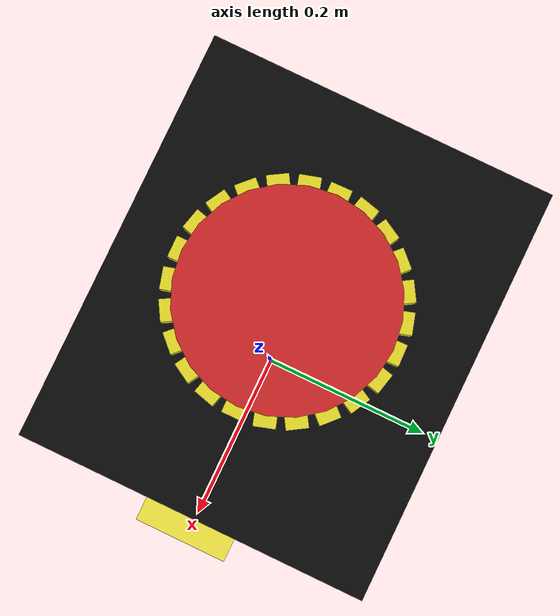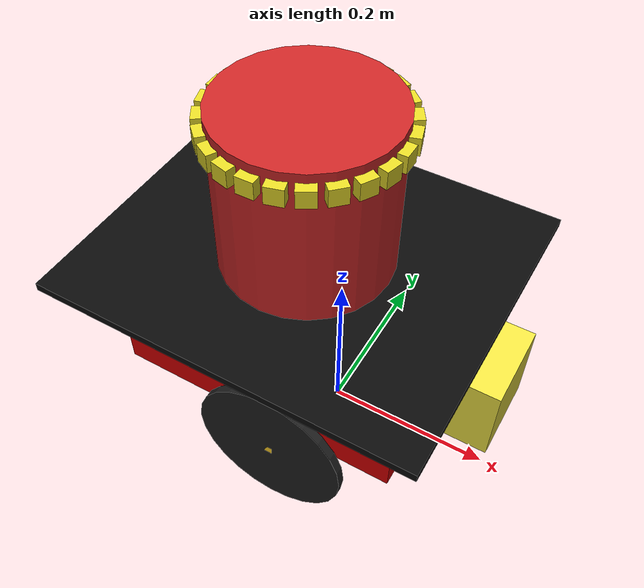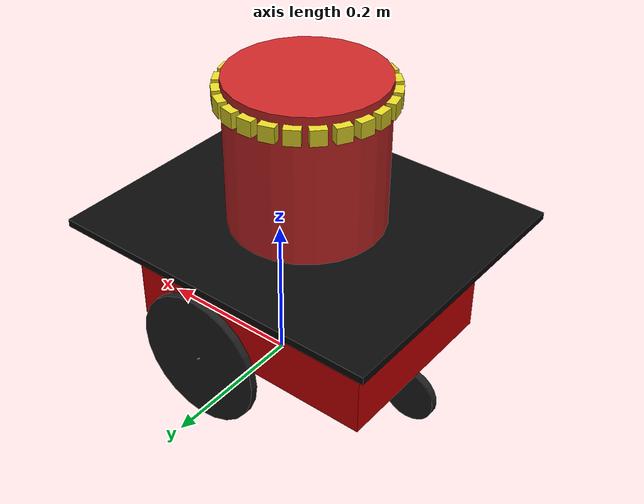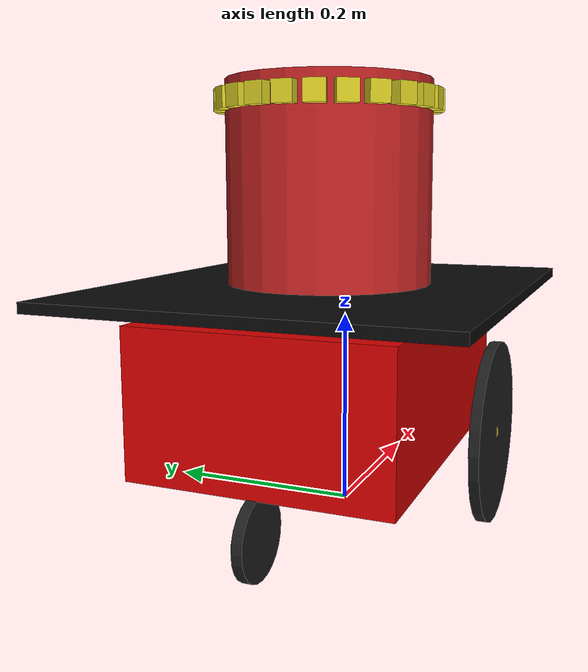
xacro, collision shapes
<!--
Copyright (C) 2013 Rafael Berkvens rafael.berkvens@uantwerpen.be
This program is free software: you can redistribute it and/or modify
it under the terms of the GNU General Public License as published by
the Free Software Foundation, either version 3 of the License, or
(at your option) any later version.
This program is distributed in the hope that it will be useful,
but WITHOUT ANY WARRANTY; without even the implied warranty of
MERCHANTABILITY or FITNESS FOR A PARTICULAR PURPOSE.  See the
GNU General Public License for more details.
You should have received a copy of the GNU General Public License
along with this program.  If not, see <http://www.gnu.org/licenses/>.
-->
<?xml version="1.0"?>

<robot name="pioneer3dx" xmlns:xacro="http://ros.org/wiki/xacro">

  <!-- import all gazebo-customization elements, including gazebo colors -->
  <xacro:include filename="$(find p3dx_description)/urdf/pioneer3dx.gazebo" />
  <!-- import the pioneer 3dx's wheels -->
  <xacro:include filename="$(find p3dx_description)/urdf/pioneer3dx_wheel.xacro" />

  <xacro:property name="irSize" value="0.02"/>
  <xacro:property name="irMass" value="0.01"/>

  <!-- chassis -->
	<link name="base_link">
		<inertial>
			<mass value="3.5" />
			<origin xyz="-0.05 0 0" />
			<inertia ixx="1" ixy="0" ixz="0" iyy="1" iyz="0" izz="1" />
		</inertial>

		<visual name="base_visual">
			<origin xyz="-0.045 0 0.148" rpy="0 0 0" />
			<geometry name="pioneer_geom">
				<mesh filename="package://p3dx_description/meshes/chassis.stl" />
			</geometry>
			<material name="ChassisRed">
				<color rgba="0.851 0.0 0.0 1.0" />
			</material>
		</visual>

		<collision>
			<origin xyz="-0.045 0 0.145" rpy="0 0 0" />
			<geometry>
				<box size="0.35 0.25 0.14" />
			</geometry>
		</collision>
	</link>

  <!-- top_plate -->
	<link name="top_plate">
		<inertial>
			<mass value="0.01" />
			<origin xyz="0 0 0" />
			<inertia ixx="1" ixy="0" ixz="0" iyy="1" iyz="0" izz="1" />
		</inertial>

		<visual name="base_visual">
			<origin xyz="0 0 0" rpy="0 0 0" />
			<geometry name="top_geom">
				<mesh filename="package://p3dx_description/meshes/top.stl" />
			</geometry>

			<material name="TopBlack">
				<color rgba="0.038 0.038 0.038 1.0" />
			</material>
		</visual>

		<collision>
			<origin xyz="0.0 0 0" rpy="0 0 0" />
			<geometry name="pioneer_geom">
				<box size="0.45 0.38 0.01" />
			</geometry>
		</collision>
	</link>

	<joint name="base_top_joint" type="fixed">
		<origin xyz="-0.045 0 0.234" rpy="0 0 0" />
		<parent link="base_link" />
		<child link="top_plate" />
	</joint>

	<link name="tower">
	  <collision name='tower_collision'>
	    <origin xyz="0 0 0" rpy="0 0 0" />
	    <geometry>
	      <cylinder radius="0.1" length="0.2" />
	    </geometry>
	  </collision>
	  <visual name='tower_visual'>
	    <origin xyz="0 0 0" rpy=" 0 0 0"/>
	    <geometry>
	      <cylinder radius="0.1" length="0.2" />
	    </geometry>
	  </visual>
	</link>

	<joint name="tower_joint" type="fixed">
          <origin xyz="0 0 0.1" rpy="0 0 0" />
	  <child link="tower"/>
	  <parent link="top_plate"/>
	</joint>

   <link name="ir1">
    <collision>
      <origin xyz="0.0 0 0.0" rpy="0 0 0"/>
      <geometry>
        <box size="${irSize} ${irSize} ${irSize}"/>
      </geometry>
    </collision>

    <visual>
      <origin xyz="0.0 0 0.0" rpy="0 0 0"/>
      <geometry>
        <box size="${irSize} ${irSize} ${irSize}"/>
      </geometry>
    </visual>

    <inertial>
      <mass value="${irMass}" />
      <origin xyz="0.0 0 0.0" rpy="0 0 0"/>
      <box_inertia m="${irMass}" x="${irSize}" y="${irSize}" z="${irSize}" />
      <inertia ixx="1e-6" ixy="0" ixz="0" iyy="1e-6" iyz="0" izz="1e-6" />
    </inertial>
  </link>
  <joint name="ir1_joint" type="fixed">
    <origin xyz="0.1 0 0.08" rpy="0 0 0"/>
    <parent link="tower"/>
    <child link="ir1"/>
  </joint>

  <link name="ir2">
    <collision>
      <origin xyz="0.0 0 0.0" rpy="0 0 0"/>
      <geometry>
        <box size="${irSize} ${irSize} ${irSize}"/>
      </geometry>
    </collision>

    <visual>
      <origin xyz="0.0 0 0.0" rpy="0 0 0"/>
      <geometry>
        <box size="${irSize} ${irSize} ${irSize}"/>
      </geometry>
    </visual>

    <inertial>
      <mass value="${irMass}" />
      <origin xyz="0.0 0 0.0" rpy="0 0 0"/>
      <box_inertia m="${irMass}" x="${irSize}" y="${irSize}" z="${irSize}" />
      <inertia ixx="1e-6" ixy="0" ixz="0" iyy="1e-6" iyz="0" izz="1e-6" />
    </inertial>
  </link>
  <joint name="ir2_joint" type="fixed">
    <origin xyz="0.097 -0.026 0.08" rpy="0 0 -0.26"/>
    <parent link="tower"/>
    <child link="ir2"/>
  </joint>

   <link name="ir3">
    <collision>
      <origin xyz="0.0 0 0.0" rpy="0 0 0"/>
      <geometry>
        <box size="${irSize} ${irSize} ${irSize}"/>
      </geometry>
    </collision>

    <visual>
      <origin xyz="0.0 0 0.0" rpy="0 0 0"/>
      <geometry>
        <box size="${irSize} ${irSize} ${irSize}"/>
      </geometry>
    </visual>

    <inertial>
      <mass value="${irMass}" />
      <origin xyz="0.0 0 0.0" rpy="0 0 0"/>
      <box_inertia m="${irMass}" x="${irSize}" y="${irSize}" z="${irSize}" />
      <inertia ixx="1e-6" ixy="0" ixz="0" iyy="1e-6" iyz="0" izz="1e-6" />
    </inertial>
  </link>
  <joint name="ir3_joint" type="fixed">
    <origin xyz="0.087 -0.05 0.08" rpy="0 0 -0.52"/>
    <parent link="tower"/>
    <child link="ir3"/>
  </joint>

  <link name="ir4">
    <collision>
      <origin xyz="0.0 0 0.0" rpy="0 0 0"/>
      <geometry>
        <box size="${irSize} ${irSize} ${irSize}"/>
      </geometry>
    </collision>

    <visual>
      <origin xyz="0.0 0 0.0" rpy="0 0 0"/>
      <geometry>
        <box size="${irSize} ${irSize} ${irSize}"/>
      </geometry>
    </visual>

    <inertial>
      <mass value="${irMass}" />
      <origin xyz="0.0 0 0.0" rpy="0 0 0"/>
      <box_inertia m="${irMass}" x="${irSize}" y="${irSize}" z="${irSize}" />
      <inertia ixx="1e-6" ixy="0" ixz="0" iyy="1e-6" iyz="0" izz="1e-6" />
    </inertial>
  </link>
  <joint name="ir4_joint" type="fixed">
    <origin xyz="0.0707 -0.0707 0.08" rpy="0 0 -0.78"/>
    <parent link="tower"/>
    <child link="ir4"/>
  </joint>

  <link name="ir5">
    <collision>
      <origin xyz="0.0 0 0.0" rpy="0 0 0"/>
      <geometry>
        <box size="${irSize} ${irSize} ${irSize}"/>
      </geometry>
    </collision>

    <visual>
      <origin xyz="0.0 0 0.0" rpy="0 0 0"/>
      <geometry>
        <box size="${irSize} ${irSize} ${irSize}"/>
      </geometry>
    </visual>

    <inertial>
      <mass value="${irMass}" />
      <origin xyz="0.0 0 0.0" rpy="0 0 0"/>
      <box_inertia m="${irMass}" x="${irSize}" y="${irSize}" z="${irSize}" />
      <inertia ixx="1e-6" ixy="0" ixz="0" iyy="1e-6" iyz="0" izz="1e-6" />
    </inertial>
  </link>
  <joint name="ir5_joint" type="fixed">
    <origin xyz="0.05 -0.087 0.08" rpy="0 0 -1.04"/>
    <parent link="tower"/>
    <child link="ir5"/>
  </joint>

  <link name="ir6">
    <collision>
      <origin xyz="0.0 0 0.0" rpy="0 0 0"/>
      <geometry>
        <box size="${irSize} ${irSize} ${irSize}"/>
      </geometry>
    </collision>

    <visual>
      <origin xyz="0.0 0 0.0" rpy="0 0 0"/>
      <geometry>
        <box size="${irSize} ${irSize} ${irSize}"/>
      </geometry>
    </visual>

    <inertial>
      <mass value="${irMass}" />
      <origin xyz="0.0 0 0.0" rpy="0 0 0"/>
      <box_inertia m="${irMass}" x="${irSize}" y="${irSize}" z="${irSize}" />
      <inertia ixx="1e-6" ixy="0" ixz="0" iyy="1e-6" iyz="0" izz="1e-6" />
    </inertial>
  </link>
  <joint name="ir6_joint" type="fixed">
    <origin xyz="0.026 -0.097 0.08" rpy="0 0 -1.30"/>
    <parent link="tower"/>
    <child link="ir6"/>
  </joint>

  <link name="ir7">
    <collision>
      <origin xyz="0.0 0 0.0" rpy="0 0 0"/>
      <geometry>
        <box size="${irSize} ${irSize} ${irSize}"/>
      </geometry>
    </collision>

    <visual>
      <origin xyz="0.0 0 0.0" rpy="0 0 0"/>
      <geometry>
        <box size="${irSize} ${irSize} ${irSize}"/>
      </geometry>
    </visual>

    <inertial>
      <mass value="${irMass}" />
      <origin xyz="0.0 0 0.0" rpy="0 0 0"/>
      <box_inertia m="${irMass}" x="${irSize}" y="${irSize}" z="${irSize}" />
      <inertia ixx="1e-6" ixy="0" ixz="0" iyy="1e-6" iyz="0" izz="1e-6" />
    </inertial>
  </link>
  <joint name="ir7_joint" type="fixed">
    <origin xyz="0 -0.1 0.08" rpy="0 0 -1.56"/>
    <parent link="tower"/>
    <child link="ir7"/>
  </joint>

  <link name="ir8">
    <collision>
      <origin xyz="0.0 0 0.0" rpy="0 0 0"/>
      <geometry>
        <box size="${irSize} ${irSize} ${irSize}"/>
      </geometry>
    </collision>

    <visual>
      <origin xyz="0.0 0 0.0" rpy="0 0 0"/>
      <geometry>
        <box size="${irSize} ${irSize} ${irSize}"/>
      </geometry>
    </visual>

    <inertial>
      <mass value="${irMass}" />
      <origin xyz="0.0 0 0.0" rpy="0 0 0"/>
      <box_inertia m="${irMass}" x="${irSize}" y="${irSize}" z="${irSize}" />
      <inertia ixx="1e-6" ixy="0" ixz="0" iyy="1e-6" iyz="0" izz="1e-6" />
    </inertial>
  </link>
  <joint name="ir8_joint" type="fixed">
    <origin xyz="-0.026 -0.097 0.08" rpy="0 0 -1.82"/>
    <parent link="tower"/>
    <child link="ir8"/>
  </joint>

  <link name="ir9">
    <collision>
      <origin xyz="0.0 0 0.0" rpy="0 0 0"/>
      <geometry>
        <box size="${irSize} ${irSize} ${irSize}"/>
      </geometry>
    </collision>

    <visual>
      <origin xyz="0.0 0 0.0" rpy="0 0 0"/>
      <geometry>
        <box size="${irSize} ${irSize} ${irSize}"/>
      </geometry>
    </visual>

    <inertial>
      <mass value="${irMass}" />
      <origin xyz="0.0 0 0.0" rpy="0 0 0"/>
      <box_inertia m="${irMass}" x="${irSize}" y="${irSize}" z="${irSize}" />
      <inertia ixx="1e-6" ixy="0" ixz="0" iyy="1e-6" iyz="0" izz="1e-6" />
    </inertial>
  </link>
  <joint name="ir9_joint" type="fixed">
    <origin xyz="-0.05 -0.087 0.08" rpy="0 0 -2.08"/>
    <parent link="tower"/>
    <child link="ir9"/>
  </joint>

  <link name="ir10">
    <collision>
      <origin xyz="0.0 0 0.0" rpy="0 0 0"/>
      <geometry>
        <box size="${irSize} ${irSize} ${irSize}"/>
      </geometry>
    </collision>

    <visual>
      <origin xyz="0.0 0 0.0" rpy="0 0 0"/>
      <geometry>
        <box size="${irSize} ${irSize} ${irSize}"/>
      </geometry>
    </visual>

    <inertial>
      <mass value="${irMass}" />
      <origin xyz="0.0 0 0.0" rpy="0 0 0"/>
      <box_inertia m="${irMass}" x="${irSize}" y="${irSize}" z="${irSize}" />
      <inertia ixx="1e-6" ixy="0" ixz="0" iyy="1e-6" iyz="0" izz="1e-6" />
    </inertial>
  </link>
  <joint name="ir10_joint" type="fixed">
    <origin xyz="-0.0707 -0.0707 0.080" rpy="0 0 -2.34"/>
    <parent link="tower"/>
    <child link="ir10"/>
  </joint>

  <link name="ir11">
    <collision>
      <origin xyz="0.0 0 0.0" rpy="0 0 0"/>
      <geometry>
        <box size="${irSize} ${irSize} ${irSize}"/>
      </geometry>
    </collision>

    <visual>
      <origin xyz="0.0 0 0.0" rpy="0 0 0"/>
      <geometry>
        <box size="${irSize} ${irSize} ${irSize}"/>
      </geometry>
    </visual>

    <inertial>
      <mass value="${irMass}" />
      <origin xyz="0.0 0 0.0" rpy="0 0 0"/>
      <box_inertia m="${irMass}" x="${irSize}" y="${irSize}" z="${irSize}" />
      <inertia ixx="1e-6" ixy="0" ixz="0" iyy="1e-6" iyz="0" izz="1e-6" />
    </inertial>
  </link>
  <joint name="ir11_joint" type="fixed">
    <origin xyz="-0.087 -0.05 0.080" rpy="0 0 -2.60"/>
    <parent link="tower"/>
    <child link="ir11"/>
  </joint>

  <link name="ir12">
    <collision>
      <origin xyz="0.0 0 0.0" rpy="0 0 0"/>
      <geometry>
        <box size="${irSize} ${irSize} ${irSize}"/>
      </geometry>
    </collision>

    <visual>
      <origin xyz="0.0 0 0.0" rpy="0 0 0"/>
      <geometry>
        <box size="${irSize} ${irSize} ${irSize}"/>
      </geometry>
    </visual>

    <inertial>
      <mass value="${irMass}" />
      <origin xyz="0.0 0 0.0" rpy="0 0 0"/>
      <box_inertia m="${irMass}" x="${irSize}" y="${irSize}" z="${irSize}" />
      <inertia ixx="1e-6" ixy="0" ixz="0" iyy="1e-6" iyz="0" izz="1e-6" />
    </inertial>
  </link>
  <joint name="ir12_joint" type="fixed">
    <origin xyz="-0.097 -0.026 0.080" rpy="0 0 -2.86"/>
    <parent link="tower"/>
    <child link="ir12"/>
  </joint>

  <link name="ir13">
    <collision>
      <origin xyz="0.0 0 0.0" rpy="0 0 0"/>
      <geometry>
        <box size="${irSize} ${irSize} ${irSize}"/>
      </geometry>
    </collision>

    <visual>
      <origin xyz="0.0 0 0.0" rpy="0 0 0"/>
      <geometry>
        <box size="${irSize} ${irSize} ${irSize}"/>
      </geometry>
    </visual>

    <inertial>
      <mass value="${irMass}" />
      <origin xyz="0.0 0 0.0" rpy="0 0 0"/>
      <box_inertia m="${irMass}" x="${irSize}" y="${irSize}" z="${irSize}" />
      <inertia ixx="1e-6" ixy="0" ixz="0" iyy="1e-6" iyz="0" izz="1e-6" />
    </inertial>
  </link>
  <joint name="ir13_joint" type="fixed">
    <origin xyz="-0.1 0 0.080" rpy="0 0 -3.12"/>
    <parent link="tower"/>
    <child link="ir13"/>
  </joint>

  <link name="ir14">
    <collision>
      <origin xyz="0.0 0 0.0" rpy="0 0 0"/>
      <geometry>
        <box size="${irSize} ${irSize} ${irSize}"/>
      </geometry>
    </collision>

    <visual>
      <origin xyz="0.0 0 0.0" rpy="0 0 0"/>
      <geometry>
        <box size="${irSize} ${irSize} ${irSize}"/>
      </geometry>
    </visual>

    <inertial>
      <mass value="${irMass}" />
      <origin xyz="0.0 0 0.0" rpy="0 0 0"/>
      <box_inertia m="${irMass}" x="${irSize}" y="${irSize}" z="${irSize}" />
      <inertia ixx="1e-6" ixy="0" ixz="0" iyy="1e-6" iyz="0" izz="1e-6" />
    </inertial>
  </link>
  <joint name="ir14_joint" type="fixed">
    <origin xyz="-0.097 0.026 0.080" rpy="0 0 -3.38"/>
    <parent link="tower"/>
    <child link="ir14"/>
  </joint>

   <link name="ir15">
    <collision>
      <origin xyz="0.0 0 0.0" rpy="0 0 0"/>
      <geometry>
        <box size="${irSize} ${irSize} ${irSize}"/>
      </geometry>
    </collision>

    <visual>
      <origin xyz="0.0 0 0.0" rpy="0 0 0"/>
      <geometry>
        <box size="${irSize} ${irSize} ${irSize}"/>
      </geometry>
    </visual>

    <inertial>
      <mass value="${irMass}" />
      <origin xyz="0.0 0 0.0" rpy="0 0 0"/>
      <box_inertia m="${irMass}" x="${irSize}" y="${irSize}" z="${irSize}" />
      <inertia ixx="1e-6" ixy="0" ixz="0" iyy="1e-6" iyz="0" izz="1e-6" />
    </inertial>
  </link>
  <joint name="ir15_joint" type="fixed">
    <origin xyz="-0.087 0.05 0.080" rpy="0 0 -3.64"/>
    <parent link="tower"/>
    <child link="ir15"/>
  </joint>

  <link name="ir16">
    <collision>
      <origin xyz="0.0 0 0.0" rpy="0 0 0"/>
      <geometry>
        <box size="${irSize} ${irSize} ${irSize}"/>
      </geometry>
    </collision>

    <visual>
      <origin xyz="0.0 0 0.0" rpy="0 0 0"/>
      <geometry>
        <box size="${irSize} ${irSize} ${irSize}"/>
      </geometry>
    </visual>

    <inertial>
      <mass value="${irMass}" />
      <origin xyz="0.0 0 0.0" rpy="0 0 0"/>
      <box_inertia m="${irMass}" x="${irSize}" y="${irSize}" z="${irSize}" />
      <inertia ixx="1e-6" ixy="0" ixz="0" iyy="1e-6" iyz="0" izz="1e-6" />
    </inertial>
  </link>
  <joint name="ir16_joint" type="fixed">
    <origin xyz="-0.0707 0.0707 0.080" rpy="0 0 -3.90"/>
    <parent link="tower"/>
    <child link="ir16"/>
  </joint>

  <link name="ir17">
    <collision>
      <origin xyz="0.0 0 0.0" rpy="0 0 0"/>
      <geometry>
        <box size="${irSize} ${irSize} ${irSize}"/>
      </geometry>
    </collision>

    <visual>
      <origin xyz="0.0 0 0.0" rpy="0 0 0"/>
      <geometry>
        <box size="${irSize} ${irSize} ${irSize}"/>
      </geometry>
    </visual>

    <inertial>
      <mass value="${irMass}" />
      <origin xyz="0.0 0 0.0" rpy="0 0 0"/>
      <box_inertia m="${irMass}" x="${irSize}" y="${irSize}" z="${irSize}" />
      <inertia ixx="1e-6" ixy="0" ixz="0" iyy="1e-6" iyz="0" izz="1e-6" />
    </inertial>
  </link>
  <joint name="ir17_joint" type="fixed">
    <origin xyz="-0.05 0.087 0.080" rpy="0 0 -4.16"/>
    <parent link="tower"/>
    <child link="ir17"/>
  </joint>

  <link name="ir18">
    <collision>
      <origin xyz="0.0 0 0.0" rpy="0 0 0"/>
      <geometry>
        <box size="${irSize} ${irSize} ${irSize}"/>
      </geometry>
    </collision>

    <visual>
      <origin xyz="0.0 0 0.0" rpy="0 0 0"/>
      <geometry>
        <box size="${irSize} ${irSize} ${irSize}"/>
      </geometry>
    </visual>

    <inertial>
      <mass value="${irMass}" />
      <origin xyz="0.0 0 0.0" rpy="0 0 0"/>
      <box_inertia m="${irMass}" x="${irSize}" y="${irSize}" z="${irSize}" />
      <inertia ixx="1e-6" ixy="0" ixz="0" iyy="1e-6" iyz="0" izz="1e-6" />
    </inertial>
  </link>
  <joint name="ir18_joint" type="fixed">
    <origin xyz="-0.026 0.097 0.080" rpy="0 0 -4.42"/>
    <parent link="tower"/>
    <child link="ir18"/>
  </joint>

  <link name="ir19">
    <collision>
      <origin xyz="0.0 0 0.0" rpy="0 0 0"/>
      <geometry>
        <box size="${irSize} ${irSize} ${irSize}"/>
      </geometry>
    </collision>

    <visual>
      <origin xyz="0.0 0 0.0" rpy="0 0 0"/>
      <geometry>
        <box size="${irSize} ${irSize} ${irSize}"/>
      </geometry>
    </visual>

    <inertial>
      <mass value="${irMass}" />
      <origin xyz="0.0 0 0.0" rpy="0 0 0"/>
      <box_inertia m="${irMass}" x="${irSize}" y="${irSize}" z="${irSize}" />
      <inertia ixx="1e-6" ixy="0" ixz="0" iyy="1e-6" iyz="0" izz="1e-6" />
    </inertial>
  </link>
  <joint name="ir19_joint" type="fixed">
    <origin xyz="0 0.1 0.080" rpy="0 0 -4.68"/>
    <parent link="tower"/>
    <child link="ir19"/>
  </joint>

  <link name="ir20">
    <collision>
      <origin xyz="0.0 0 0.0" rpy="0 0 0"/>
      <geometry>
        <box size="${irSize} ${irSize} ${irSize}"/>
      </geometry>
    </collision>

    <visual>
      <origin xyz="0.0 0 0.0" rpy="0 0 0"/>
      <geometry>
        <box size="${irSize} ${irSize} ${irSize}"/>
      </geometry>
    </visual>

    <inertial>
      <mass value="${irMass}" />
      <origin xyz="0.0 0 0.0" rpy="0 0 0"/>
      <box_inertia m="${irMass}" x="${irSize}" y="${irSize}" z="${irSize}" />
      <inertia ixx="1e-6" ixy="0" ixz="0" iyy="1e-6" iyz="0" izz="1e-6" />
    </inertial>
  </link>
  <joint name="ir20_joint" type="fixed">
    <origin xyz="0.026 0.097 0.080" rpy="0 0 -4.94"/>
    <parent link="tower"/>
    <child link="ir20"/>
  </joint>

  <link name="ir21">
    <collision>
      <origin xyz="0.0 0 0.0" rpy="0 0 0"/>
      <geometry>
        <box size="${irSize} ${irSize} ${irSize}"/>
      </geometry>
    </collision>

    <visual>
      <origin xyz="0.0 0 0.0" rpy="0 0 0"/>
      <geometry>
        <box size="${irSize} ${irSize} ${irSize}"/>
      </geometry>
    </visual>

    <inertial>
      <mass value="${irMass}" />
      <origin xyz="0.0 0 0.0" rpy="0 0 0"/>
      <box_inertia m="${irMass}" x="${irSize}" y="${irSize}" z="${irSize}" />
      <inertia ixx="1e-6" ixy="0" ixz="0" iyy="1e-6" iyz="0" izz="1e-6" />
    </inertial>
  </link>
  <joint name="ir21_joint" type="fixed">
    <origin xyz="0.05 0.087 0.080" rpy="0 0 -5.20"/>
    <parent link="tower"/>
    <child link="ir21"/>
  </joint>

  <link name="ir22">
    <collision>
      <origin xyz="0.0 0 0.0" rpy="0 0 0"/>
      <geometry>
        <box size="${irSize} ${irSize} ${irSize}"/>
      </geometry>
    </collision>

    <visual>
      <origin xyz="0.0 0 0.0" rpy="0 0 0"/>
      <geometry>
        <box size="${irSize} ${irSize} ${irSize}"/>
      </geometry>
    </visual>

    <inertial>
      <mass value="${irMass}" />
      <origin xyz="0.0 0 0.0" rpy="0 0 0"/>
      <box_inertia m="${irMass}" x="${irSize}" y="${irSize}" z="${irSize}" />
      <inertia ixx="1e-6" ixy="0" ixz="0" iyy="1e-6" iyz="0" izz="1e-6" />
    </inertial>
  </link>
  <joint name="ir22_joint" type="fixed">
    <origin xyz="0.0707 0.0707 0.080" rpy="0 0 -5.46"/>
    <parent link="tower"/>
    <child link="ir22"/>
  </joint>

  <link name="ir23">
    <collision>
      <origin xyz="0.0 0 0.0" rpy="0 0 0"/>
      <geometry>
        <box size="${irSize} ${irSize} ${irSize}"/>
      </geometry>
    </collision>

    <visual>
      <origin xyz="0.0 0 0.0" rpy="0 0 0"/>
      <geometry>
        <box size="${irSize} ${irSize} ${irSize}"/>
      </geometry>
    </visual>

    <inertial>
      <mass value="${irMass}" />
      <origin xyz="0.0 0 0.0" rpy="0 0 0"/>
      <box_inertia m="${irMass}" x="${irSize}" y="${irSize}" z="${irSize}" />
      <inertia ixx="1e-6" ixy="0" ixz="0" iyy="1e-6" iyz="0" izz="1e-6" />
    </inertial>
  </link>
  <joint name="ir23_joint" type="fixed">
    <origin xyz="0.087 0.05 0.080" rpy="0 0 -5.72"/>
    <parent link="tower"/>
    <child link="ir23"/>
  </joint>

  <link name="ir24">
    <collision>
      <origin xyz="0.0 0 0.0" rpy="0 0 0"/>
      <geometry>
        <box size="${irSize} ${irSize} ${irSize}"/>
      </geometry>
    </collision>

    <visual>
      <origin xyz="0.0 0 0.0" rpy="0 0 0"/>
      <geometry>
        <box size="${irSize} ${irSize} ${irSize}"/>
      </geometry>
    </visual>

    <inertial>
      <mass value="${irMass}" />
      <origin xyz="0.0 0 0.0" rpy="0 0 0"/>
      <box_inertia m="${irMass}" x="${irSize}" y="${irSize}" z="${irSize}" />
      <inertia ixx="1e-6" ixy="0" ixz="0" iyy="1e-6" iyz="0" izz="1e-6" />
    </inertial>
  </link>
  <joint name="ir24_joint" type="fixed">
    <origin xyz="0.097 0.026 0.080" rpy="0 0 -5.98"/>
    <parent link="tower"/>
    <child link="ir24"/>
  </joint>

  <!-- swivel -->
	<link name="swivel">
		<inertial>
			<mass value="0.1" />
			<origin xyz="0 0 0" />
			<inertia ixx="0.01" ixy="0" ixz="0" iyy="0.01" iyz="0" izz="0.01" />
		</inertial>

		<visual name="base_visual">
			<origin xyz="0 0 0" rpy="0 0 0" />
			<geometry name="pioneer_geom">
				<mesh filename="package://p3dx_description/meshes/swivel.stl" />
			</geometry>
			<material name="swivel">
				<color rgba="0.5 0.5 0.5 1" />
			</material>
		</visual>

		<collision>
			<origin xyz="0 0 0" rpy="0 0 0" />
			<geometry>
				<box size="0 0 0" />
			</geometry>
		</collision>
	</link>

	<joint name="base_swivel_joint" type="continuous">
		<origin xyz="-0.185 0 0.055" rpy="0 0 0" />
		<axis xyz="0 0 1" />
		<anchor xyz="0 0 0" />
		<limit effort="100" velocity="100" k_velocity="0" />
		<joint_properties damping="0.0" friction="0.0" />
		<parent link="base_link" />
		<child link="swivel" />
	</joint>

  <!-- center_hubcap -->
	<link name="center_hubcap">
		<inertial>
			<mass value="0.01" />
			<origin xyz="0 0 0" />
			<inertia ixx="0.012411765597" ixy="-0.000711733678" ixz="0.00050272983"
				iyy="0.015218160428" iyz="-0.000004273467" izz="0.011763977943" />
		</inertial>

		<visual name="base_visual">
			<origin xyz="0 0 0" rpy="0 0 0" />
			<geometry name="pioneer_geom">
				<mesh filename="package://p3dx_description/meshes/center_hubcap.stl" />
			</geometry>
			<material name="swivel">
				<color rgba="0.5 0.5 0.5 1" />
			</material>
		</visual>

		<collision>
			<origin xyz="0 0 0" rpy="0 0 0" />
			<geometry>
				<box size="0 0 0" />
			</geometry>
		</collision>
	</link>

	<joint name="swivel_hubcap_joint" type="continuous">
		<origin xyz="-0.026 0 -0.016" rpy="0 0 0" />
		<axis xyz="0 1 0" />
		<anchor xyz="0 0 0" />
		<limit effort="100" velocity="100" k_velocity="0" />
		<joint_properties damping="0.0" friction="0.0" />
		<parent link="swivel" />
		<child link="center_wheel" />
	</joint>

  <!-- center_wheel -->
	<link name="center_wheel">
		<inertial>
			<mass value="0.1" />
			<origin xyz="0 0 0" />
			<inertia ixx="0.012411765597" ixy="-0.000711733678" ixz="0.00050272983"
				iyy="0.015218160428" iyz="-0.000004273467" izz="0.011763977943" />
		</inertial>

		<visual name="base_visual">
			<origin xyz="0 0 0" rpy="0 0 0" />
			<geometry name="pioneer_geom">
				<mesh filename="package://p3dx_description/meshes/center_wheel.stl" />
			</geometry>
			<material name="WheelBlack">
				<color rgba="0.117 0.117 0.117 1" />
			</material>
		</visual>

		<collision>
			<origin xyz="0 0 0" rpy="${-3.1415927/2.0} 0 0" />
			<geometry>
				<cylinder radius="0.0375" length="0.01" />
			</geometry>
		</collision>
	</link>

	<joint name="center_wheel_joint" type="fixed">
		<origin xyz="-0.0035 0 -0.001" rpy="0 0 0"/>
		<parent link="center_wheel"/>
		<child link="center_hubcap"/>
	</joint>

	<xacro:p3dx_wheel suffix="left" parent="base_link" reflect="1"/>
	<xacro:p3dx_wheel suffix="right" parent="base_link" reflect="-1"/>

  <!-- front_sonar -->
	<link name="front_sonar">
		<inertial>
			<mass value="0.0001" />
			<origin xyz="0 0 0" />
			<inertia ixx="1" ixy="0" ixz="0" iyy="1" iyz="0" izz="1" />
		</inertial>

		<visual name="front_sonar_vis">
			<origin rpy="0 0 0" xyz="0 0 0" />
			<geometry name="pioneer_geom">
				<mesh filename="package://p3dx_description/meshes/front_sonar.stl" />
			</geometry>
			<material name="SonarYellow">
				<color rgba="0.715 0.583 0.210 1.0" />
			</material>
		</visual>

		<collision>
			<origin rpy="0 0 0" xyz="0 0 0" />
			<geometry>
				<box size="0 0 0" />
			</geometry>
		</collision>
	</link>

	<joint name="base_front_joint" type="fixed">
		<origin rpy="0 0 0" xyz="0.109 0 0.209" />
		<parent link="base_link" />
		<child link="front_sonar" />
	</joint>

	<!-- lms100 laser -->
	<link name="lms100">
		<inertial>
			<mass value="1e-5" />
			<origin xyz="0 0 0" rpy="0 0 0" />
			<inertia ixx="1e-6" ixy="0" ixz="0" iyy="1e-6" iyz="0" izz="1e-6" />
		</inertial>

		<visual>
			<origin xyz="0 0 0" rpy="0 0 0" />
			<geometry>
				<mesh filename="package://p3dx_description/meshes/lms100.dae" />
			</geometry>
		</visual>

		<collision>
			<origin xyz="0 0 0" rpy="0 0 0" />
			<geometry>
				<box size="0.1 0.1 0.1" />
			</geometry>
		</collision>
	</link>

	<joint name="lms100_joint" type="fixed">
		<axis xyz="0 1 0" />
		<origin xyz="0.16 0 0.15" rpy="0 0 0" />
		<parent link="base_link" />
		<child link="lms100" />
	</joint>

</robot>

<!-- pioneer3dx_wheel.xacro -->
<robot xmlns:xacro="http://ros.org/wiki/xacro">

	<!-- properties (constants) -->
	<property name="M_PI" value="3.14159" />

	<!-- right/left hubcap + wheel -->
	<xacro:macro name="p3dx_wheel" params="suffix parent reflect">

		<!-- wheel -->
		<link name="p3dx_${suffix}_wheel">
			<inertial>
				<mass value="0.5" />
				<origin xyz="0 0 0" />
				<inertia ixx="0.012411765597" ixy="0" ixz="0" iyy="0.015218160428"
					iyz="0" izz="0.011763977943" />
			</inertial>

			<visual name="base_visual">
				<origin xyz="0 0 0" rpy="0 0 0" />
				<geometry name="pioneer_geom">
					<mesh filename="package://p3dx_description/meshes/${suffix}_wheel.stl" />
				</geometry>
				<material name="WheelBlack">
					<color rgba="0.117 0.117 0.117 1" />
				</material>
			</visual>

			<collision>
				<origin xyz="0 0 0" rpy="${-3.1415927/2} 0 0" />
				<geometry>
					<cylinder radius="0.09" length="0.01" />
				</geometry>
			</collision>
		</link>

		<joint name="base_${suffix}_hubcap_joint" type="fixed">
			<origin xyz="0 0 0" rpy="0 0 0" />
			<parent link="p3dx_${suffix}_wheel" />
			<child link="p3dx_${suffix}_hubcap" />
		</joint>

		<!-- hubcap -->
		<link name="p3dx_${suffix}_hubcap">
			<inertial>
				<mass value="0.01" />
				<origin xyz="0 0 0" />
				<inertia ixx="0.012411765597" ixy="0" ixz="0" iyy="0.015218160428"
					iyz="0" izz="0.011763977943" />
			</inertial>

			<visual name="base_visual">
				<origin xyz="0 0 0" rpy="0 0 0" />
				<geometry name="pioneer_geom">
					<mesh filename="package://p3dx_description/meshes/${suffix}_hubcap.stl" />
				</geometry>

				<material name="HubcapYellow">
					<color rgba="1.0 0.811 0.151 1.0" />
				</material>
			</visual>

			<collision>
				<origin xyz="0 0 0" rpy="0 0 0" />
				<geometry>
					<box size="0.01 0.01 0.01" />
				</geometry>
			</collision>
		</link>

		<joint name="base_${suffix}_wheel_joint" type="continuous">
			<axis xyz="0 1 0" />
			<anchor xyz="0 0 0" />
			<limit effort="100" velocity="100" />
			<joint_properties damping="0.0" friction="0.0" />
			<origin xyz="0 ${reflect*0.158} 0.091" rpy="0 0 0" />
			<parent link="base_link" />
			<child link="p3dx_${suffix}_wheel" />
		</joint>

		<!-- gazebo elements -->

	    <transmission name="${parent}_${suffix}_wheel_trans">
	      <type>pr2_mechanism_model/SimpleTransmission</type>
	      <joint name="base_${suffix}_wheel_joint">
	      	<hardwareInterface>VelocityJointInterface</hardwareInterface>
	  	  </joint>
	      <actuator name="base_${suffix}_wheel_motor">
	        <mechanicalReduction>${reflect * 624/35 * 80/19}</mechanicalReduction>
	      </actuator>
	    </transmission>

		<gazebo reference="p3dx_${suffix}_hubcap">
			<material>Gazebo/Yellow</material>
		</gazebo>

		<gazebo reference="p3dx_${suffix}_wheel">
			<material>Gazebo/Black</material>
			<mu1>0.5</mu1>
			<mu2>50.0</mu2>
			<kp>100000000.0</kp>
			<kd>1.0</kd>
		</gazebo>

	</xacro:macro>

</robot>
